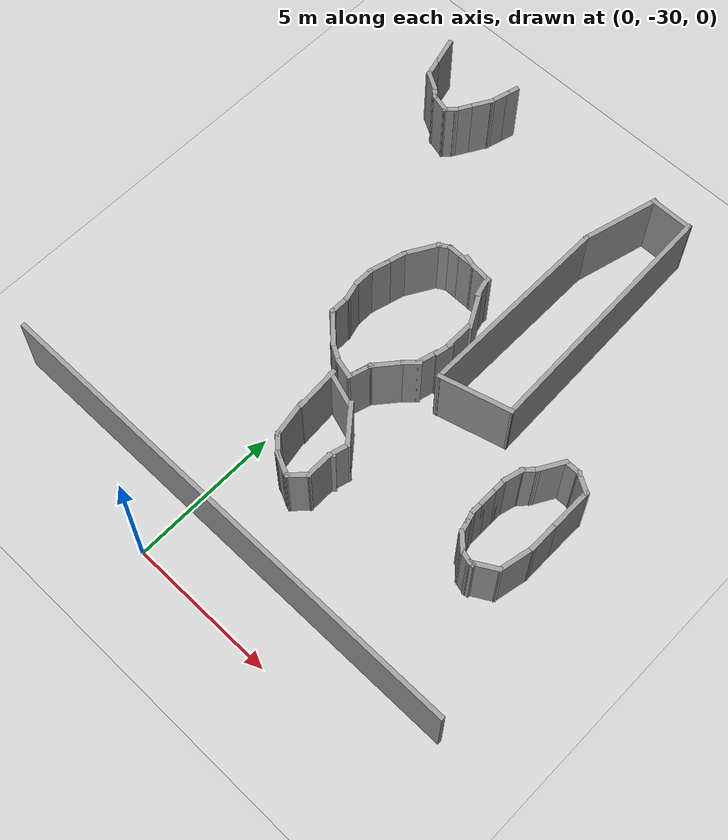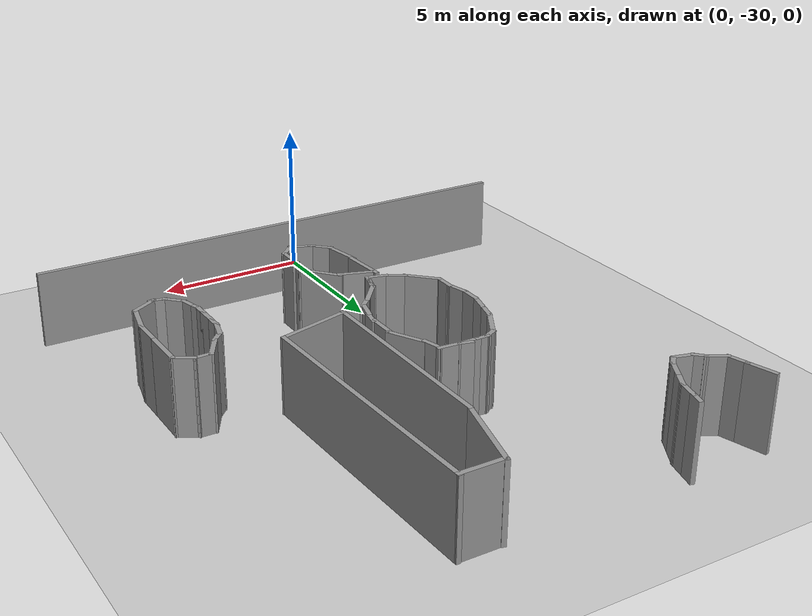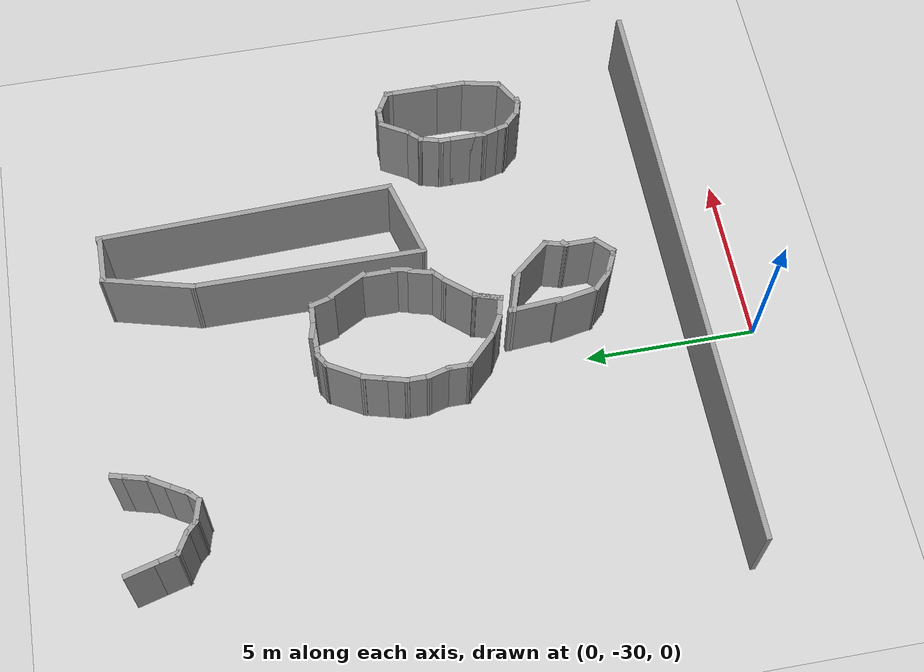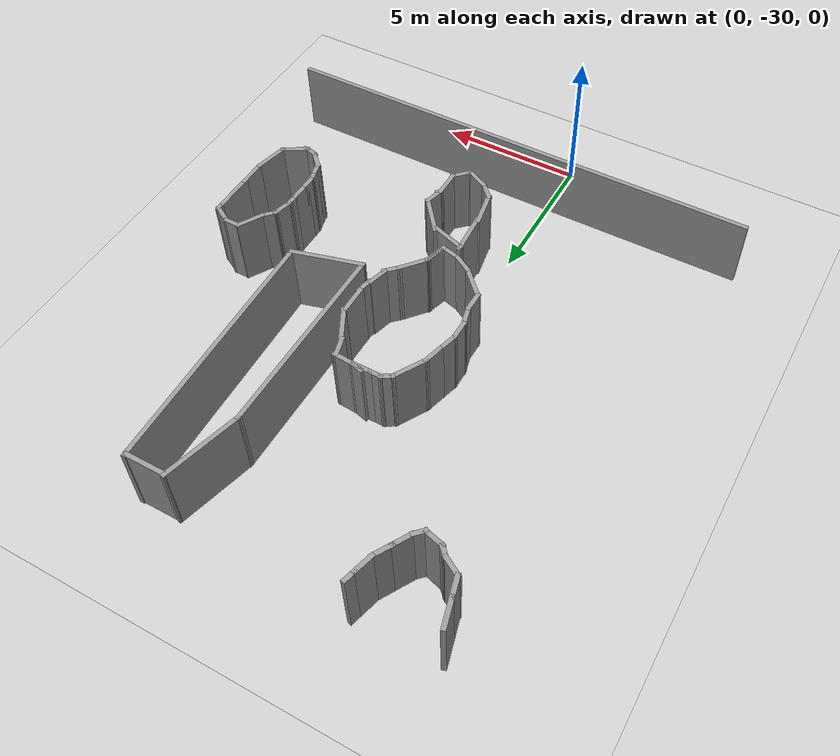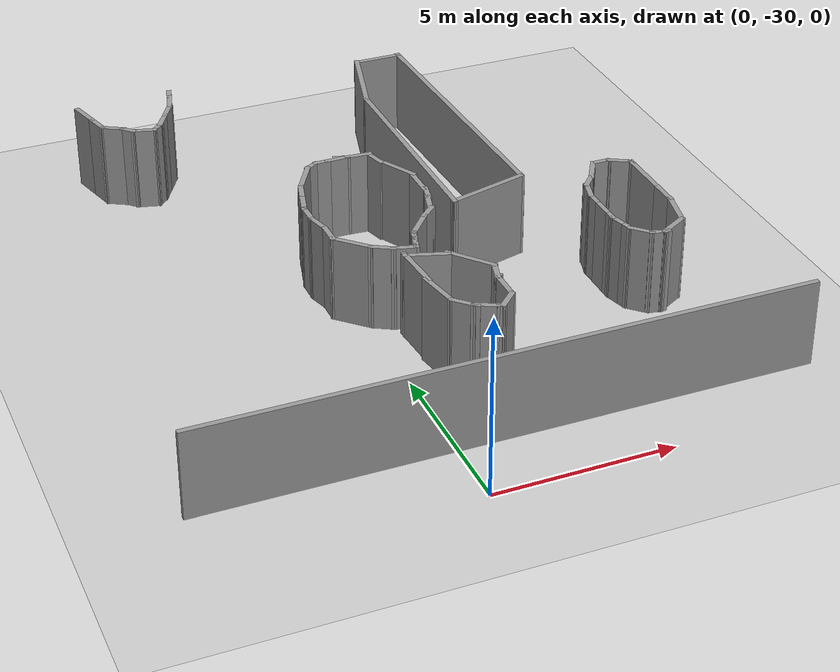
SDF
<sdf version="1.7">
 <world name="default">
  <model name="ground_plane">
   <static>1</static>
   <link name="link">
    <collision name="collision">
     <geometry><plane><normal>0 0 1</normal><size>100 100</size></plane></geometry>
     <surface><friction><ode><mu>100</mu><mu2>50</mu2></ode></friction></surface>
    </collision>
    <visual name="visual">
     <cast_shadows>0</cast_shadows>
     <geometry><plane><normal>0 0 1</normal><size>100 100</size></plane></geometry>
     <material>
      <script><uri>file://media/materials/scripts/gazebo.material</uri><name>Gazebo/Grey</name></script>
     </material>
    </visual>
   </link>
  </model>
  <model name="complex_wall">
   <pose>1.5 0.5 0 0 0 -1.5708</pose>
   <link name="Wall_268">
    <collision name="Wall_268_Collision">
     <geometry><box><size>1 0.15 2.5</size></box></geometry>
     <pose>0 0 1.25 0 -0 0</pose>
    </collision>
    <visual name="Wall_268_Visual">
     <pose>0 0 1.25 0 -0 0</pose>
     <geometry><box><size>1 0.15 2.5</size></box></geometry>
     <material>
      <script><uri>file://media/materials/scripts/gazebo.material</uri><name>Gazebo/Grey</name></script>
      <ambient>1 1 1 1</ambient>
     </material>
     <meta><layer>0</layer></meta>
    </visual>
    <pose>12.3765 -6.41238 0 0 -0 0.261799</pose>
   </link>
   <link name="Wall_269">
    <collision name="Wall_269_Collision">
     <geometry><box><size>0.75 0.15 2.5</size></box></geometry>
     <pose>0 0 1.25 0 -0 0</pose>
    </collision>
    <visual name="Wall_269_Visual">
     <pose>0 0 1.25 0 -0 0</pose>
     <geometry><box><size>0.75 0.15 2.5</size></box></geometry>
     <material>
      <script><uri>file://media/materials/scripts/gazebo.material</uri><name>Gazebo/Grey</name></script>
      <ambient>1 1 1 1</ambient>
     </material>
     <meta><layer>0</layer></meta>
    </visual>
    <pose>13.0768 -6.22474 0 0 -0 0.261799</pose>
   </link>
   <link name="Wall_270">
    <collision name="Wall_270_Collision">
     <geometry><box><size>0.75 0.15 2.5</size></box></geometry>
     <pose>0 0 1.25 0 -0 0</pose>
    </collision>
    <visual name="Wall_270_Visual">
     <pose>0 0 1.25 0 -0 0</pose>
     <geometry><box><size>0.75 0.15 2.5</size></box></geometry>
     <material>
      <script><uri>file://media/materials/scripts/gazebo.material</uri><name>Gazebo/Grey</name></script>
      <ambient>1 1 1 1</ambient>
     </material>
     <meta><layer>0</layer></meta>
    </visual>
    <pose>13.5166 -5.88729 0 0 -0 1.0472</pose>
   </link>
   <link name="Wall_271">
    <collision name="Wall_271_Collision">
     <geometry><box><size>0.5 0.15 2.5</size></box></geometry>
     <pose>0 0 1.25 0 -0 0</pose>
    </collision>
    <visual name="Wall_271_Visual">
     <pose>0 0 1.25 0 -0 0</pose>
     <geometry><box><size>0.5 0.15 2.5</size></box></geometry>
     <material>
      <script><uri>file://media/materials/scripts/gazebo.material</uri><name>Gazebo/Grey</name></script>
      <ambient>1 1 1 1</ambient>
     </material>
     <meta><layer>0</layer></meta>
    </visual>
    <pose>13.7903 -5.50373 0 0 -0 0.785398</pose>
   </link>
   <link name="Wall_272">
    <collision name="Wall_272_Collision">
     <geometry><box><size>0.75 0.15 2.5</size></box></geometry>
     <pose>0 0 1.25 0 -0 0</pose>
    </collision>
    <visual name="Wall_272_Visual">
     <pose>0 0 1.25 0 -0 0</pose>
     <geometry><box><size>0.75 0.15 2.5</size></box></geometry>
     <material>
      <script><uri>file://media/materials/scripts/gazebo.material</uri><name>Gazebo/Grey</name></script>
      <ambient>1 1 1 1</ambient>
     </material>
     <meta><layer>0</layer></meta>
    </visual>
    <pose>13.9917 -5.09021 0 0 -0 1.309</pose>
   </link>
   <link name="Wall_273">
    <collision name="Wall_273_Collision">
     <geometry><box><size>0.5 0.15 2.5</size></box></geometry>
     <pose>0 0 1.25 0 -0 0</pose>
    </collision>
    <visual name="Wall_273_Visual">
     <pose>0 0 1.25 0 -0 0</pose>
     <geometry><box><size>0.5 0.15 2.5</size></box></geometry>
     <material>
      <script><uri>file://media/materials/scripts/gazebo.material</uri><name>Gazebo/Grey</name></script>
      <ambient>1 1 1 1</ambient>
     </material>
     <meta><layer>0</layer></meta>
    </visual>
    <pose>13.9456 -4.67669 0 0 -0 2.35619</pose>
   </link>
   <link name="Wall_274">
    <collision name="Wall_274_Collision">
     <geometry><box><size>0.75 0.15 2.5</size></box></geometry>
     <pose>0 0 1.25 0 -0 0</pose>
    </collision>
    <visual name="Wall_274_Visual">
     <pose>0 0 1.25 0 -0 0</pose>
     <geometry><box><size>0.75 0.15 2.5</size></box></geometry>
     <material>
      <script><uri>file://media/materials/scripts/gazebo.material</uri><name>Gazebo/Grey</name></script>
      <ambient>1 1 1 1</ambient>
     </material>
     <meta><layer>0</layer></meta>
    </visual>
    <pose>13.5621 -4.40295 0 0 -0 2.61799</pose>
   </link>
   <link name="Wall_275">
    <collision name="Wall_275_Collision">
     <geometry><box><size>0.75 0.15 2.5</size></box></geometry>
     <pose>0 0 1.25 0 -0 0</pose>
    </collision>
    <visual name="Wall_275_Visual">
     <pose>0 0 1.25 0 -0 0</pose>
     <geometry><box><size>0.75 0.15 2.5</size></box></geometry>
     <material>
      <script><uri>file://media/materials/scripts/gazebo.material</uri><name>Gazebo/Grey</name></script>
      <ambient>1 1 1 1</ambient>
     </material>
     <meta><layer>0</layer></meta>
    </visual>
    <pose>13.0425 -4.10295 0 0 -0 2.61799</pose>
   </link>
   <link name="Wall_276">
    <collision name="Wall_276_Collision">
     <geometry><box><size>0.75 0.15 2.5</size></box></geometry>
     <pose>0 0 1.25 0 -0 0</pose>
    </collision>
    <visual name="Wall_276_Visual">
     <pose>0 0 1.25 0 -0 0</pose>
     <geometry><box><size>0.75 0.15 2.5</size></box></geometry>
     <material>
      <script><uri>file://media/materials/scripts/gazebo.material</uri><name>Gazebo/Grey</name></script>
      <ambient>1 1 1 1</ambient>
     </material>
     <meta><layer>0</layer></meta>
    </visual>
    <pose>12.4929 -3.8753 0 0 -0 2.87979</pose>
   </link>
   <link name="Wall_277">
    <collision name="Wall_277_Collision">
     <geometry><box><size>0.5 0.15 2.5</size></box></geometry>
     <pose>0 0 1.25 0 -0 0</pose>
    </collision>
    <visual name="Wall_277_Visual">
     <pose>0 0 1.25 0 -0 0</pose>
     <geometry><box><size>0.5 0.15 2.5</size></box></geometry>
     <material>
      <script><uri>file://media/materials/scripts/gazebo.material</uri><name>Gazebo/Grey</name></script>
      <ambient>1 1 1 1</ambient>
     </material>
     <meta><layer>0</layer></meta>
    </visual>
    <pose>12.0341 -3.75236 0 0 -0 2.87979</pose>
   </link>
   <link name="Wall_327">
    <collision name="Wall_327_Collision">
     <geometry><box><size>1.5 0.15 2.5</size></box></geometry>
     <pose>0 0 1.25 0 -0 0</pose>
    </collision>
    <visual name="Wall_327_Visual">
     <pose>0 0 1.25 0 -0 0</pose>
     <geometry><box><size>1.5 0.15 2.5</size></box></geometry>
     <material>
      <script><uri>file://media/materials/scripts/gazebo.material</uri><name>Gazebo/Grey</name></script>
      <ambient>1 1 1 1</ambient>
     </material>
     <meta><layer>0</layer></meta>
    </visual>
    <pose>12.1471 2.90048 0 0 -0 -1.5708</pose>
   </link>
   <link name="Wall_328">
    <collision name="Wall_328_Collision">
     <geometry><box><size>2.73171 0.15 2.5</size></box></geometry>
     <pose>0 0 1.25 0 -0 0</pose>
    </collision>
    <visual name="Wall_328_Visual">
     <pose>0 0 1.25 0 -0 0</pose>
     <geometry><box><size>2.73171 0.15 2.5</size></box></geometry>
     <material>
      <script><uri>file://media/materials/scripts/gazebo.material</uri><name>Gazebo/Grey</name></script>
      <ambient>1 1 1 1</ambient>
     </material>
     <meta><layer>0</layer></meta>
    </visual>
    <pose>13.3632 1.89907 0 0 -0 -0.255633</pose>
   </link>
   <link name="Wall_329">
    <collision name="Wall_329_Collision">
     <geometry><box><size>6.75 0.15 2.5</size></box></geometry>
     <pose>0 0 1.25 0 -0 0</pose>
    </collision>
    <visual name="Wall_329_Visual">
     <pose>0 0 1.25 0 -0 0</pose>
     <geometry><box><size>6.75 0.15 2.5</size></box></geometry>
     <material>
      <script><uri>file://media/materials/scripts/gazebo.material</uri><name>Gazebo/Grey</name></script>
      <ambient>1 1 1 1</ambient>
     </material>
     <meta><layer>0</layer></meta>
    </visual>
    <pose>17.9121 1.57267 0 0 -0 0</pose>
   </link>
   <link name="Wall_330">
    <collision name="Wall_330_Collision">
     <geometry><box><size>2.5 0.15 2.5</size></box></geometry>
     <pose>0 0 1.25 0 -0 0</pose>
    </collision>
    <visual name="Wall_330_Visual">
     <pose>0 0 1.25 0 -0 0</pose>
     <geometry><box><size>2.5 0.15 2.5</size></box></geometry>
     <material>
      <script><uri>file://media/materials/scripts/gazebo.material</uri><name>Gazebo/Grey</name></script>
      <ambient>1 1 1 1</ambient>
     </material>
     <meta><layer>0</layer></meta>
    </visual>
    <pose>20.908 2.70763 0 0 -0 1.8326</pose>
   </link>
   <link name="Wall_331">
    <collision name="Wall_331_Collision">
     <geometry><box><size>8.64379 0.15 2.5</size></box></geometry>
     <pose>0 0 1.25 0 -0 0</pose>
    </collision>
    <visual name="Wall_331_Visual">
     <pose>0 0 1.25 0 -0 0</pose>
     <geometry><box><size>8.64379 0.15 2.5</size></box></geometry>
     <material>
      <script><uri>file://media/materials/scripts/gazebo.material</uri><name>Gazebo/Grey</name></script>
      <ambient>1 1 1 1</ambient>
     </material>
     <meta><layer>0</layer></meta>
    </visual>
    <pose>16.3591 3.70904 0 0 -0 -3.11014</pose>
   </link>
   <link name="Wall_333">
    <collision name="Wall_333_Collision">
     <geometry><box><size>1 0.15 2.5</size></box></geometry>
     <pose>0 0 1.25 0 -0 0</pose>
    </collision>
    <visual name="Wall_333_Visual">
     <pose>0 0 1.25 0 -0 0</pose>
     <geometry><box><size>1 0.15 2.5</size></box></geometry>
     <material>
      <script><uri>file://media/materials/scripts/gazebo.material</uri><name>Gazebo/Grey</name></script>
      <ambient>1 1 1 1</ambient>
     </material>
     <meta><layer>0</layer></meta>
    </visual>
    <pose>22.9295 7.04157 0 0 -0 3.14159</pose>
   </link>
   <link name="Wall_334">
    <collision name="Wall_334_Collision">
     <geometry><box><size>1.5 0.15 2.5</size></box></geometry>
     <pose>0 0 1.25 0 -0 0</pose>
    </collision>
    <visual name="Wall_334_Visual">
     <pose>0 0 1.25 0 -0 0</pose>
     <geometry><box><size>1.5 0.15 2.5</size></box></geometry>
     <material>
      <script><uri>file://media/materials/scripts/gazebo.material</uri><name>Gazebo/Grey</name></script>
      <ambient>1 1 1 1</ambient>
     </material>
     <meta><layer>0</layer></meta>
    </visual>
    <pose>21.8295 7.04157 0 0 -0 3.14159</pose>
   </link>
   <link name="Wall_335">
    <collision name="Wall_335_Collision">
     <geometry><box><size>0.25 0.15 2.5</size></box></geometry>
     <pose>0 0 1.25 0 -0 0</pose>
    </collision>
    <visual name="Wall_335_Visual">
     <pose>0 0 1.25 0 -0 0</pose>
     <geometry><box><size>0.25 0.15 2.5</size></box></geometry>
     <material>
      <script><uri>file://media/materials/scripts/gazebo.material</uri><name>Gazebo/Grey</name></script>
      <ambient>1 1 1 1</ambient>
     </material>
     <meta><layer>0</layer></meta>
    </visual>
    <pose>21.1045 7.04157 0 0 -0 3.14159</pose>
   </link>
   <link name="Wall_336">
    <collision name="Wall_336_Collision">
     <geometry><box><size>0.75 0.15 2.5</size></box></geometry>
     <pose>0 0 1.25 0 -0 0</pose>
    </collision>
    <visual name="Wall_336_Visual">
     <pose>0 0 1.25 0 -0 0</pose>
     <geometry><box><size>0.75 0.15 2.5</size></box></geometry>
     <material>
      <script><uri>file://media/materials/scripts/gazebo.material</uri><name>Gazebo/Grey</name></script>
      <ambient>1 1 1 1</ambient>
     </material>
     <meta><layer>0</layer></meta>
    </visual>
    <pose>20.9045 6.78176 0 0 -0 -2.0944</pose>
   </link>
   <link name="Wall_337">
    <collision name="Wall_337_Collision">
     <geometry><box><size>0.183062 0.15 2.5</size></box></geometry>
     <pose>0 0 1.25 0 -0 0</pose>
    </collision>
    <visual name="Wall_337_Visual">
     <pose>0 0 1.25 0 -0 0</pose>
     <geometry><box><size>0.183062 0.15 2.5</size></box></geometry>
     <material>
      <script><uri>file://media/materials/scripts/gazebo.material</uri><name>Gazebo/Grey</name></script>
      <ambient>1 1 1 1</ambient>
     </material>
     <meta><layer>0</layer></meta>
    </visual>
    <pose>20.7415 6.51167 0 0 -0 -2.47001</pose>
   </link>
   <link name="Wall_338">
    <collision name="Wall_338_Collision">
     <geometry><box><size>0.5 0.15 2.5</size></box></geometry>
     <pose>0 0 1.25 0 -0 0</pose>
    </collision>
    <visual name="Wall_338_Visual">
     <pose>0 0 1.25 0 -0 0</pose>
     <geometry><box><size>0.5 0.15 2.5</size></box></geometry>
     <material>
      <script><uri>file://media/materials/scripts/gazebo.material</uri><name>Gazebo/Grey</name></script>
      <ambient>1 1 1 1</ambient>
     </material>
     <meta><layer>0</layer></meta>
    </visual>
    <pose>20.7286 6.28837 0 0 -0 -1.5708</pose>
   </link>
   <link name="Wall_340">
    <collision name="Wall_340_Collision">
     <geometry><box><size>1 0.15 2.5</size></box></geometry>
     <pose>0 0 1.25 0 -0 0</pose>
    </collision>
    <visual name="Wall_340_Visual">
     <pose>0 0 1.25 0 -0 0</pose>
     <geometry><box><size>1 0.15 2.5</size></box></geometry>
     <material>
      <script><uri>file://media/materials/scripts/gazebo.material</uri><name>Gazebo/Grey</name></script>
      <ambient>1 1 1 1</ambient>
     </material>
     <meta><layer>0</layer></meta>
    </visual>
    <pose>21.0926 5.79937 0 0 -0 -0.523599</pose>
   </link>
   <link name="Wall_342">
    <collision name="Wall_342_Collision">
     <geometry><box><size>0.5 0.15 2.5</size></box></geometry>
     <pose>0 0 1.25 0 -0 0</pose>
    </collision>
    <visual name="Wall_342_Visual">
     <pose>0 0 1.25 0 -0 0</pose>
     <geometry><box><size>0.5 0.15 2.5</size></box></geometry>
     <material>
      <script><uri>file://media/materials/scripts/gazebo.material</uri><name>Gazebo/Grey</name></script>
      <ambient>1 1 1 1</ambient>
     </material>
     <meta><layer>0</layer></meta>
    </visual>
    <pose>22.5397 5.13075 0 0 -0 0</pose>
   </link>
   <link name="Wall_343">
    <collision name="Wall_343_Collision">
     <geometry><box><size>0.75 0.15 2.5</size></box></geometry>
     <pose>0 0 1.25 0 -0 0</pose>
    </collision>
    <visual name="Wall_343_Visual">
     <pose>0 0 1.25 0 -0 0</pose>
     <geometry><box><size>0.75 0.15 2.5</size></box></geometry>
     <material>
      <script><uri>file://media/materials/scripts/gazebo.material</uri><name>Gazebo/Grey</name></script>
      <ambient>1 1 1 1</ambient>
     </material>
     <meta><layer>0</layer></meta>
    </visual>
    <pose>23.0147 5.13075 0 0 -0 0</pose>
   </link>
   <link name="Wall_344">
    <collision name="Wall_344_Collision">
     <geometry><box><size>0.5 0.15 2.5</size></box></geometry>
     <pose>0 0 1.25 0 -0 0</pose>
    </collision>
    <visual name="Wall_344_Visual">
     <pose>0 0 1.25 0 -0 0</pose>
     <geometry><box><size>0.5 0.15 2.5</size></box></geometry>
     <material>
      <script><uri>file://media/materials/scripts/gazebo.material</uri><name>Gazebo/Grey</name></script>
      <ambient>1 1 1 1</ambient>
     </material>
     <meta><layer>0</layer></meta>
    </visual>
    <pose>23.4897 5.13075 0 0 -0 0</pose>
   </link>
   <link name="Wall_345">
    <collision name="Wall_345_Collision">
     <geometry><box><size>0.5 0.15 2.5</size></box></geometry>
     <pose>0 0 1.25 0 -0 0</pose>
    </collision>
    <visual name="Wall_345_Visual">
     <pose>0 0 1.25 0 -0 0</pose>
     <geometry><box><size>0.5 0.15 2.5</size></box></geometry>
     <material>
      <script><uri>file://media/materials/scripts/gazebo.material</uri><name>Gazebo/Grey</name></script>
      <ambient>1 1 1 1</ambient>
     </material>
     <meta><layer>0</layer></meta>
    </visual>
    <pose>23.8338 5.17604 0 0 -0 0.261799</pose>
   </link>
   <link name="Wall_346">
    <collision name="Wall_346_Collision">
     <geometry><box><size>0.5 0.15 2.5</size></box></geometry>
     <pose>0 0 1.25 0 -0 0</pose>
    </collision>
    <visual name="Wall_346_Visual">
     <pose>0 0 1.25 0 -0 0</pose>
     <geometry><box><size>0.5 0.15 2.5</size></box></geometry>
     <material>
      <script><uri>file://media/materials/scripts/gazebo.material</uri><name>Gazebo/Grey</name></script>
      <ambient>1 1 1 1</ambient>
     </material>
     <meta><layer>0</layer></meta>
    </visual>
    <pose>24.1718 5.26663 0 0 -0 0.261799</pose>
   </link>
   <link name="Wall_347">
    <collision name="Wall_347_Collision">
     <geometry><box><size>0.75 0.15 2.5</size></box></geometry>
     <pose>0 0 1.25 0 -0 0</pose>
    </collision>
    <visual name="Wall_347_Visual">
     <pose>0 0 1.25 0 -0 0</pose>
     <geometry><box><size>0.75 0.15 2.5</size></box></geometry>
     <material>
      <script><uri>file://media/materials/scripts/gazebo.material</uri><name>Gazebo/Grey</name></script>
      <ambient>1 1 1 1</ambient>
     </material>
     <meta><layer>0</layer></meta>
    </visual>
    <pose>24.553 5.52405 0 0 -0 0.785398</pose>
   </link>
   <link name="Wall_348">
    <collision name="Wall_348_Collision">
     <geometry><box><size>0.5 0.15 2.5</size></box></geometry>
     <pose>0 0 1.25 0 -0 0</pose>
    </collision>
    <visual name="Wall_348_Visual">
     <pose>0 0 1.25 0 -0 0</pose>
     <geometry><box><size>0.5 0.15 2.5</size></box></geometry>
     <material>
      <script><uri>file://media/materials/scripts/gazebo.material</uri><name>Gazebo/Grey</name></script>
      <ambient>1 1 1 1</ambient>
     </material>
     <meta><layer>0</layer></meta>
    </visual>
    <pose>24.8104 5.90522 0 0 -0 1.309</pose>
   </link>
   <link name="Wall_349">
    <collision name="Wall_349_Collision">
     <geometry><box><size>0.25 0.15 2.5</size></box></geometry>
     <pose>0 0 1.25 0 -0 0</pose>
    </collision>
    <visual name="Wall_349_Visual">
     <pose>0 0 1.25 0 -0 0</pose>
     <geometry><box><size>0.25 0.15 2.5</size></box></geometry>
     <material>
      <script><uri>file://media/materials/scripts/gazebo.material</uri><name>Gazebo/Grey</name></script>
      <ambient>1 1 1 1</ambient>
     </material>
     <meta><layer>0</layer></meta>
    </visual>
    <pose>24.8557 6.12426 0 0 -0 1.5708</pose>
   </link>
   <link name="Wall_351">
    <collision name="Wall_351_Collision">
     <geometry><box><size>1 0.15 2.5</size></box></geometry>
     <pose>0 0 1.25 0 -0 0</pose>
    </collision>
    <visual name="Wall_351_Visual">
     <pose>0 0 1.25 0 -0 0</pose>
     <geometry><box><size>1 0.15 2.5</size></box></geometry>
     <material>
      <script><uri>file://media/materials/scripts/gazebo.material</uri><name>Gazebo/Grey</name></script>
      <ambient>1 1 1 1</ambient>
     </material>
     <meta><layer>0</layer></meta>
    </visual>
    <pose>24.6432 6.44232 0 0 -0 2.0944</pose>
   </link>
   <link name="Wall_352">
    <collision name="Wall_352_Collision">
     <geometry><box><size>1.25079 0.15 2.5</size></box></geometry>
     <pose>0 0 1.25 0 -0 0</pose>
    </collision>
    <visual name="Wall_352_Visual">
     <pose>0 0 1.25 0 -0 0</pose>
     <geometry><box><size>1.25079 0.15 2.5</size></box></geometry>
     <material>
      <script><uri>file://media/materials/scripts/gazebo.material</uri><name>Gazebo/Grey</name></script>
      <ambient>1 1 1 1</ambient>
     </material>
     <meta><layer>0</layer></meta>
    </visual>
    <pose>23.8926 6.92598 0 0 -0 2.92999</pose>
   </link>
   <link name="Wall_354">
    <collision name="Wall_354_Collision">
     <geometry><box><size>1 0.15 2.5</size></box></geometry>
     <pose>0 0 1.25 0 -0 0</pose>
    </collision>
    <visual name="Wall_354_Visual">
     <pose>0 0 1.25 0 -0 0</pose>
     <geometry><box><size>1 0.15 2.5</size></box></geometry>
     <material>
      <script><uri>file://media/materials/scripts/gazebo.material</uri><name>Gazebo/Grey</name></script>
      <ambient>1 1 1 1</ambient>
     </material>
     <meta><layer>0</layer></meta>
    </visual>
    <pose>19.8515 1.07051 0 0 -0 3.14159</pose>
   </link>
   <link name="Wall_355">
    <collision name="Wall_355_Collision">
     <geometry><box><size>1.28471 0.15 2.5</size></box></geometry>
     <pose>0 0 1.25 0 -0 0</pose>
    </collision>
    <visual name="Wall_355_Visual">
     <pose>0 0 1.25 0 -0 0</pose>
     <geometry><box><size>1.28471 0.15 2.5</size></box></geometry>
     <material>
      <script><uri>file://media/materials/scripts/gazebo.material</uri><name>Gazebo/Grey</name></script>
      <ambient>1 1 1 1</ambient>
     </material>
     <meta><layer>0</layer></meta>
    </visual>
    <pose>18.8893 0.839214 0 0 -0 -2.64787</pose>
   </link>
   <link name="Wall_356">
    <collision name="Wall_356_Collision">
     <geometry><box><size>0.75 0.15 2.5</size></box></geometry>
     <pose>0 0 1.25 0 -0 0</pose>
    </collision>
    <visual name="Wall_356_Visual">
     <pose>0 0 1.25 0 -0 0</pose>
     <geometry><box><size>0.75 0.15 2.5</size></box></geometry>
     <material>
      <script><uri>file://media/materials/scripts/gazebo.material</uri><name>Gazebo/Grey</name></script>
      <ambient>1 1 1 1</ambient>
     </material>
     <meta><layer>0</layer></meta>
    </visual>
    <pose>18.0999 0.455113 0 0 -0 -2.87979</pose>
   </link>
   <link name="Wall_357">
    <collision name="Wall_357_Collision">
     <geometry><box><size>0.801562 0.15 2.5</size></box></geometry>
     <pose>0 0 1.25 0 -0 0</pose>
    </collision>
    <visual name="Wall_357_Visual">
     <pose>0 0 1.25 0 -0 0</pose>
     <geometry><box><size>0.801562 0.15 2.5</size></box></geometry>
     <material>
      <script><uri>file://media/materials/scripts/gazebo.material</uri><name>Gazebo/Grey</name></script>
      <ambient>1 1 1 1</ambient>
     </material>
     <meta><layer>0</layer></meta>
    </visual>
    <pose>17.7859 0.09017 0 0 -0 -1.64521</pose>
   </link>
   <link name="Wall_358">
    <collision name="Wall_358_Collision">
     <geometry><box><size>0.5 0.15 2.5</size></box></geometry>
     <pose>0 0 1.25 0 -0 0</pose>
    </collision>
    <visual name="Wall_358_Visual">
     <pose>0 0 1.25 0 -0 0</pose>
     <geometry><box><size>0.5 0.15 2.5</size></box></geometry>
     <material>
      <script><uri>file://media/materials/scripts/gazebo.material</uri><name>Gazebo/Grey</name></script>
      <ambient>1 1 1 1</ambient>
     </material>
     <meta><layer>0</layer></meta>
    </visual>
    <pose>17.7164 -0.403746 0 0 -0 -1.8326</pose>
   </link>
   <link name="Wall_360">
    <collision name="Wall_360_Collision">
     <geometry><box><size>0.75 0.15 2.5</size></box></geometry>
     <pose>0 0 1.25 0 -0 0</pose>
    </collision>
    <visual name="Wall_360_Visual">
     <pose>0 0 1.25 0 -0 0</pose>
     <geometry><box><size>0.75 0.15 2.5</size></box></geometry>
     <material>
      <script><uri>file://media/materials/scripts/gazebo.material</uri><name>Gazebo/Grey</name></script>
      <ambient>1 1 1 1</ambient>
     </material>
     <meta><layer>0</layer></meta>
    </visual>
    <pose>17.7617 -0.534709 0 0 -0 -1.5708</pose>
   </link>
   <link name="Wall_361">
    <collision name="Wall_361_Collision">
     <geometry><box><size>0.5 0.15 2.5</size></box></geometry>
     <pose>0 0 1.25 0 -0 0</pose>
    </collision>
    <visual name="Wall_361_Visual">
     <pose>0 0 1.25 0 -0 0</pose>
     <geometry><box><size>0.5 0.15 2.5</size></box></geometry>
     <material>
      <script><uri>file://media/materials/scripts/gazebo.material</uri><name>Gazebo/Grey</name></script>
      <ambient>1 1 1 1</ambient>
     </material>
     <meta><layer>0</layer></meta>
    </visual>
    <pose>17.7617 -1.00971 0 0 -0 -1.5708</pose>
   </link>
   <link name="Wall_362">
    <collision name="Wall_362_Collision">
     <geometry><box><size>0.5 0.15 2.5</size></box></geometry>
     <pose>0 0 1.25 0 -0 0</pose>
    </collision>
    <visual name="Wall_362_Visual">
     <pose>0 0 1.25 0 -0 0</pose>
     <geometry><box><size>0.5 0.15 2.5</size></box></geometry>
     <material>
      <script><uri>file://media/materials/scripts/gazebo.material</uri><name>Gazebo/Grey</name></script>
      <ambient>1 1 1 1</ambient>
     </material>
     <meta><layer>0</layer></meta>
    </visual>
    <pose>17.8492 -1.33626 0 0 -0 -1.0472</pose>
   </link>
   <link name="Wall_363">
    <collision name="Wall_363_Collision">
     <geometry><box><size>1.25 0.15 2.5</size></box></geometry>
     <pose>0 0 1.25 0 -0 0</pose>
    </collision>
    <visual name="Wall_363_Visual">
     <pose>0 0 1.25 0 -0 0</pose>
     <geometry><box><size>1.25 0.15 2.5</size></box></geometry>
     <material>
      <script><uri>file://media/materials/scripts/gazebo.material</uri><name>Gazebo/Grey</name></script>
      <ambient>1 1 1 1</ambient>
     </material>
     <meta><layer>0</layer></meta>
    </visual>
    <pose>18.413 -1.76282 0 0 -0 -0.523599</pose>
   </link>
   <link name="Wall_364">
    <collision name="Wall_364_Collision">
     <geometry><box><size>0.75 0.15 2.5</size></box></geometry>
     <pose>0 0 1.25 0 -0 0</pose>
    </collision>
    <visual name="Wall_364_Visual">
     <pose>0 0 1.25 0 -0 0</pose>
     <geometry><box><size>0.75 0.15 2.5</size></box></geometry>
     <material>
      <script><uri>file://media/materials/scripts/gazebo.material</uri><name>Gazebo/Grey</name></script>
      <ambient>1 1 1 1</ambient>
     </material>
     <meta><layer>0</layer></meta>
    </visual>
    <pose>19.1791 -2.11546 0 0 -0 -0.261799</pose>
   </link>
   <link name="Wall_365">
    <collision name="Wall_365_Collision">
     <geometry><box><size>0.75 0.15 2.5</size></box></geometry>
     <pose>0 0 1.25 0 -0 0</pose>
    </collision>
    <visual name="Wall_365_Visual">
     <pose>0 0 1.25 0 -0 0</pose>
     <geometry><box><size>0.75 0.15 2.5</size></box></geometry>
     <material>
      <script><uri>file://media/materials/scripts/gazebo.material</uri><name>Gazebo/Grey</name></script>
      <ambient>1 1 1 1</ambient>
     </material>
     <meta><layer>0</layer></meta>
    </visual>
    <pose>19.7587 -2.27075 0 0 -0 -0.261799</pose>
   </link>
   <link name="Wall_366">
    <collision name="Wall_366_Collision">
     <geometry><box><size>0.75 0.15 2.5</size></box></geometry>
     <pose>0 0 1.25 0 -0 0</pose>
    </collision>
    <visual name="Wall_366_Visual">
     <pose>0 0 1.25 0 -0 0</pose>
     <geometry><box><size>0.75 0.15 2.5</size></box></geometry>
     <material>
      <script><uri>file://media/materials/scripts/gazebo.material</uri><name>Gazebo/Grey</name></script>
      <ambient>1 1 1 1</ambient>
     </material>
     <meta><layer>0</layer></meta>
    </visual>
    <pose>20.3484 -2.3484 0 0 -0 0</pose>
   </link>
   <link name="Wall_367">
    <collision name="Wall_367_Collision">
     <geometry><box><size>0.75 0.15 2.5</size></box></geometry>
     <pose>0 0 1.25 0 -0 0</pose>
    </collision>
    <visual name="Wall_367_Visual">
     <pose>0 0 1.25 0 -0 0</pose>
     <geometry><box><size>0.75 0.15 2.5</size></box></geometry>
     <material>
      <script><uri>file://media/materials/scripts/gazebo.material</uri><name>Gazebo/Grey</name></script>
      <ambient>1 1 1 1</ambient>
     </material>
     <meta><layer>0</layer></meta>
    </visual>
    <pose>20.9382 -2.27075 0 0 -0 0.261799</pose>
   </link>
   <link name="Wall_368">
    <collision name="Wall_368_Collision">
     <geometry><box><size>0.75 0.15 2.5</size></box></geometry>
     <pose>0 0 1.25 0 -0 0</pose>
    </collision>
    <visual name="Wall_368_Visual">
     <pose>0 0 1.25 0 -0 0</pose>
     <geometry><box><size>0.75 0.15 2.5</size></box></geometry>
     <material>
      <script><uri>file://media/materials/scripts/gazebo.material</uri><name>Gazebo/Grey</name></script>
      <ambient>1 1 1 1</ambient>
     </material>
     <meta><layer>0</layer></meta>
    </visual>
    <pose>21.528 -2.19311 0 0 -0 0</pose>
   </link>
   <link name="Wall_369">
    <collision name="Wall_369_Collision">
     <geometry><box><size>0.15 0.15 2.5</size></box></geometry>
     <pose>0 0 1.25 0 -0 0</pose>
    </collision>
    <visual name="Wall_369_Visual">
     <pose>0 0 1.25 0 -0 0</pose>
     <geometry><box><size>0.15 0.15 2.5</size></box></geometry>
     <material>
      <script><uri>file://media/materials/scripts/gazebo.material</uri><name>Gazebo/Grey</name></script>
      <ambient>1 1 1 1</ambient>
     </material>
     <meta><layer>0</layer></meta>
    </visual>
    <pose>21.828 -2.19311 0 0 -0 0</pose>
   </link>
   <link name="Wall_370">
    <collision name="Wall_370_Collision">
     <geometry><box><size>1.25 0.15 2.5</size></box></geometry>
     <pose>0 0 1.25 0 -0 0</pose>
    </collision>
    <visual name="Wall_370_Visual">
     <pose>0 0 1.25 0 -0 0</pose>
     <geometry><box><size>1.25 0.15 2.5</size></box></geometry>
     <material>
      <script><uri>file://media/materials/scripts/gazebo.material</uri><name>Gazebo/Grey</name></script>
      <ambient>1 1 1 1</ambient>
     </material>
     <meta><layer>0</layer></meta>
    </visual>
    <pose>22.2169 -1.8042 0 0 -0 0.785398</pose>
   </link>
   <link name="Wall_371">
    <collision name="Wall_371_Collision">
     <geometry><box><size>0.75 0.15 2.5</size></box></geometry>
     <pose>0 0 1.25 0 -0 0</pose>
    </collision>
    <visual name="Wall_371_Visual">
     <pose>0 0 1.25 0 -0 0</pose>
     <geometry><box><size>0.75 0.15 2.5</size></box></geometry>
     <material>
      <script><uri>file://media/materials/scripts/gazebo.material</uri><name>Gazebo/Grey</name></script>
      <ambient>1 1 1 1</ambient>
     </material>
     <meta><layer>0</layer></meta>
    </visual>
    <pose>22.7558 -1.15548 0 0 -0 1.0472</pose>
   </link>
   <link name="Wall_372">
    <collision name="Wall_372_Collision">
     <geometry><box><size>0.75 0.15 2.5</size></box></geometry>
     <pose>0 0 1.25 0 -0 0</pose>
    </collision>
    <visual name="Wall_372_Visual">
     <pose>0 0 1.25 0 -0 0</pose>
     <geometry><box><size>0.75 0.15 2.5</size></box></geometry>
     <material>
      <script><uri>file://media/materials/scripts/gazebo.material</uri><name>Gazebo/Grey</name></script>
      <ambient>1 1 1 1</ambient>
     </material>
     <meta><layer>0</layer></meta>
    </visual>
    <pose>22.9835 -0.605899 0 0 -0 1.309</pose>
   </link>
   <link name="Wall_373">
    <collision name="Wall_373_Collision">
     <geometry><box><size>0.869093 0.15 2.5</size></box></geometry>
     <pose>0 0 1.25 0 -0 0</pose>
    </collision>
    <visual name="Wall_373_Visual">
     <pose>0 0 1.25 0 -0 0</pose>
     <geometry><box><size>0.869093 0.15 2.5</size></box></geometry>
     <material>
      <script><uri>file://media/materials/scripts/gazebo.material</uri><name>Gazebo/Grey</name></script>
      <ambient>1 1 1 1</ambient>
     </material>
     <meta><layer>0</layer></meta>
    </visual>
    <pose>22.7169 -0.212305 0 0 -0 2.84868</pose>
   </link>
   <link name="Wall_374">
    <collision name="Wall_374_Collision">
     <geometry><box><size>1.10627 0.15 2.5</size></box></geometry>
     <pose>0 0 1.25 0 -0 0</pose>
    </collision>
    <visual name="Wall_374_Visual">
     <pose>0 0 1.25 0 -0 0</pose>
     <geometry><box><size>1.10627 0.15 2.5</size></box></geometry>
     <material>
      <script><uri>file://media/materials/scripts/gazebo.material</uri><name>Gazebo/Grey</name></script>
      <ambient>1 1 1 1</ambient>
     </material>
     <meta><layer>0</layer></meta>
    </visual>
    <pose>22.0058 0.198214 0 0 -0 2.4452</pose>
   </link>
   <link name="Wall_375">
    <collision name="Wall_375_Collision">
     <geometry><box><size>0.639256 0.15 2.5</size></box></geometry>
     <pose>0 0 1.25 0 -0 0</pose>
    </collision>
    <visual name="Wall_375_Visual">
     <pose>0 0 1.25 0 -0 0</pose>
     <geometry><box><size>0.639256 0.15 2.5</size></box></geometry>
     <material>
      <script><uri>file://media/materials/scripts/gazebo.material</uri><name>Gazebo/Grey</name></script>
      <ambient>1 1 1 1</ambient>
     </material>
     <meta><layer>0</layer></meta>
    </visual>
    <pose>21.47 0.681747 0 0 -0 2.33366</pose>
   </link>
   <link name="Wall_376">
    <collision name="Wall_376_Collision">
     <geometry><box><size>0.75 0.15 2.5</size></box></geometry>
     <pose>0 0 1.25 0 -0 0</pose>
    </collision>
    <visual name="Wall_376_Visual">
     <pose>0 0 1.25 0 -0 0</pose>
     <geometry><box><size>0.75 0.15 2.5</size></box></geometry>
     <material>
      <script><uri>file://media/materials/scripts/gazebo.material</uri><name>Gazebo/Grey</name></script>
      <ambient>1 1 1 1</ambient>
     </material>
     <meta><layer>0</layer></meta>
    </visual>
    <pose>21.0112 0.898643 0 0 -0 2.87979</pose>
   </link>
   <link name="Wall_377">
    <collision name="Wall_377_Collision">
     <geometry><box><size>0.641615 0.15 2.5</size></box></geometry>
     <pose>0 0 1.25 0 -0 0</pose>
    </collision>
    <visual name="Wall_377_Visual">
     <pose>0 0 1.25 0 -0 0</pose>
     <geometry><box><size>0.641615 0.15 2.5</size></box></geometry>
     <material>
      <script><uri>file://media/materials/scripts/gazebo.material</uri><name>Gazebo/Grey</name></script>
      <ambient>1 1 1 1</ambient>
     </material>
     <meta><layer>0</layer></meta>
    </visual>
    <pose>20.4802 1.06098 0 0 -0 2.94875</pose>
   </link>
   <link name="Wall_382">
    <collision name="Wall_382_Collision">
     <geometry><box><size>0.75 0.15 2.5</size></box></geometry>
     <pose>0 0 1.25 0 -0 0</pose>
    </collision>
    <visual name="Wall_382_Visual">
     <pose>0 0 1.25 0 -0 0</pose>
     <geometry><box><size>0.75 0.15 2.5</size></box></geometry>
     <material>
      <script><uri>file://media/materials/scripts/gazebo.material</uri><name>Gazebo/Grey</name></script>
      <ambient>1 1 1 1</ambient>
     </material>
     <meta><layer>0</layer></meta>
    </visual>
    <pose>22.0749 5.20839 0 0 -0 2.87979</pose>
   </link>
   <link name="Wall_383">
    <collision name="Wall_383_Collision">
     <geometry><box><size>0.15 0.15 2.5</size></box></geometry>
     <pose>0 0 1.25 0 -0 0</pose>
    </collision>
    <visual name="Wall_383_Visual">
     <pose>0 0 1.25 0 -0 0</pose>
     <geometry><box><size>0.15 0.15 2.5</size></box></geometry>
     <material>
      <script><uri>file://media/materials/scripts/gazebo.material</uri><name>Gazebo/Grey</name></script>
      <ambient>1 1 1 1</ambient>
     </material>
     <meta><layer>0</layer></meta>
    </visual>
    <pose>21.7852 5.28604 0 0 -0 0</pose>
   </link>
   <link name="Wall_384">
    <collision name="Wall_384_Collision">
     <geometry><box><size>0.592515 0.15 2.5</size></box></geometry>
     <pose>0 0 1.25 0 -0 0</pose>
    </collision>
    <visual name="Wall_384_Visual">
     <pose>0 0 1.25 0 -0 0</pose>
     <geometry><box><size>0.592515 0.15 2.5</size></box></geometry>
     <material>
      <script><uri>file://media/materials/scripts/gazebo.material</uri><name>Gazebo/Grey</name></script>
      <ambient>1 1 1 1</ambient>
     </material>
     <meta><layer>0</layer></meta>
    </visual>
    <pose>21.6229 5.43645 0 0 -0 2.39406</pose>
   </link>
   <link name="Wall_392">
    <collision name="Wall_392_Collision">
     <geometry><box><size>0.15 0.15 2.5</size></box></geometry>
     <pose>0 0 1.25 0 -0 0</pose>
    </collision>
    <visual name="Wall_392_Visual">
     <pose>0 0 1.25 0 -0 0</pose>
     <geometry><box><size>0.15 0.15 2.5</size></box></geometry>
     <material>
      <script><uri>file://media/materials/scripts/gazebo.material</uri><name>Gazebo/Grey</name></script>
      <ambient>1 1 1 1</ambient>
     </material>
     <meta><layer>0</layer></meta>
    </visual>
    <pose>22.3727 -0.108489 0 0 -0 0</pose>
   </link>
   <link name="Wall_393">
    <collision name="Wall_393_Collision">
     <geometry><box><size>0.869093 0.15 2.5</size></box></geometry>
     <pose>0 0 1.25 0 -0 0</pose>
    </collision>
    <visual name="Wall_393_Visual">
     <pose>0 0 1.25 0 -0 0</pose>
     <geometry><box><size>0.869093 0.15 2.5</size></box></geometry>
     <material>
      <script><uri>file://media/materials/scripts/gazebo.material</uri><name>Gazebo/Grey</name></script>
      <ambient>1 1 1 1</ambient>
     </material>
     <meta><layer>0</layer></meta>
    </visual>
    <pose>22.7169 -0.212305 0 0 -0 -0.292913</pose>
   </link>
   <link name="Wall_399">
    <collision name="Wall_399_Collision">
     <geometry><box><size>0.25 0.15 2.5</size></box></geometry>
     <pose>0 0 1.25 0 -0 0</pose>
    </collision>
    <visual name="Wall_399_Visual">
     <pose>0 0 1.25 0 -0 0</pose>
     <geometry><box><size>0.25 0.15 2.5</size></box></geometry>
     <material>
      <script><uri>file://media/materials/scripts/gazebo.material</uri><name>Gazebo/Grey</name></script>
      <ambient>1 1 1 1</ambient>
     </material>
     <meta><layer>0</layer></meta>
    </visual>
    <pose>25.2087 1.0727 0 0 -0 2.35619</pose>
   </link>
   <link name="Wall_401">
    <collision name="Wall_401_Collision">
     <geometry><box><size>0.75 0.15 2.5</size></box></geometry>
     <pose>0 0 1.25 0 -0 0</pose>
    </collision>
    <visual name="Wall_401_Visual">
     <pose>0 0 1.25 0 -0 0</pose>
     <geometry><box><size>0.75 0.15 2.5</size></box></geometry>
     <material>
      <script><uri>file://media/materials/scripts/gazebo.material</uri><name>Gazebo/Grey</name></script>
      <ambient>1 1 1 1</ambient>
     </material>
     <meta><layer>0</layer></meta>
    </visual>
    <pose>24.9543 1.11499 0 0 -0 2.87979</pose>
   </link>
   <link name="Wall_402">
    <collision name="Wall_402_Collision">
     <geometry><box><size>1.50104 0.15 2.5</size></box></geometry>
     <pose>0 0 1.25 0 -0 0</pose>
    </collision>
    <visual name="Wall_402_Visual">
     <pose>0 0 1.25 0 -0 0</pose>
     <geometry><box><size>1.50104 0.15 2.5</size></box></geometry>
     <material>
      <script><uri>file://media/materials/scripts/gazebo.material</uri><name>Gazebo/Grey</name></script>
      <ambient>1 1 1 1</ambient>
     </material>
     <meta><layer>0</layer></meta>
    </visual>
    <pose>24.1467 0.758865 0 0 -0 -2.44433</pose>
   </link>
   <link name="Wall_403">
    <collision name="Wall_403_Collision">
     <geometry><box><size>1.28332 0.15 2.5</size></box></geometry>
     <pose>0 0 1.25 0 -0 0</pose>
    </collision>
    <visual name="Wall_403_Visual">
     <pose>0 0 1.25 0 -0 0</pose>
     <geometry><box><size>1.28332 0.15 2.5</size></box></geometry>
     <material>
      <script><uri>file://media/materials/scripts/gazebo.material</uri><name>Gazebo/Grey</name></script>
      <ambient>1 1 1 1</ambient>
     </material>
     <meta><layer>0</layer></meta>
    </visual>
    <pose>23.5274 -0.213194 0 0 -0 -1.88856</pose>
   </link>
   <link name="Wall_404">
    <collision name="Wall_404_Collision">
     <geometry><box><size>1.55782 0.15 2.5</size></box></geometry>
     <pose>0 0 1.25 0 -0 0</pose>
    </collision>
    <visual name="Wall_404_Visual">
     <pose>0 0 1.25 0 -0 0</pose>
     <geometry><box><size>1.55782 0.15 2.5</size></box></geometry>
     <material>
      <script><uri>file://media/materials/scripts/gazebo.material</uri><name>Gazebo/Grey</name></script>
      <ambient>1 1 1 1</ambient>
     </material>
     <meta><layer>0</layer></meta>
    </visual>
    <pose>23.9769 -0.702674 0 0 -0 0.069398</pose>
   </link>
   <link name="Wall_405">
    <collision name="Wall_405_Collision">
     <geometry><box><size>1.33116 0.15 2.5</size></box></geometry>
     <pose>0 0 1.25 0 -0 0</pose>
    </collision>
    <visual name="Wall_405_Visual">
     <pose>0 0 1.25 0 -0 0</pose>
     <geometry><box><size>1.33116 0.15 2.5</size></box></geometry>
     <material>
      <script><uri>file://media/materials/scripts/gazebo.material</uri><name>Gazebo/Grey</name></script>
      <ambient>1 1 1 1</ambient>
     </material>
     <meta><layer>0</layer></meta>
    </visual>
    <pose>25.2104 -0.597403 0 0 -0 0.180743</pose>
   </link>
   <link name="Wall_406">
    <collision name="Wall_406_Collision">
     <geometry><box><size>0.75 0.15 2.5</size></box></geometry>
     <pose>0 0 1.25 0 -0 0</pose>
    </collision>
    <visual name="Wall_406_Visual">
     <pose>0 0 1.25 0 -0 0</pose>
     <geometry><box><size>0.75 0.15 2.5</size></box></geometry>
     <material>
      <script><uri>file://media/materials/scripts/gazebo.material</uri><name>Gazebo/Grey</name></script>
      <ambient>1 1 1 1</ambient>
     </material>
     <meta><layer>0</layer></meta>
    </visual>
    <pose>26.0035 -0.279108 0 0 -0 0.785398</pose>
   </link>
   <link name="Wall_407">
    <collision name="Wall_407_Collision">
     <geometry><box><size>0.25 0.15 2.5</size></box></geometry>
     <pose>0 0 1.25 0 -0 0</pose>
    </collision>
    <visual name="Wall_407_Visual">
     <pose>0 0 1.25 0 -0 0</pose>
     <geometry><box><size>0.25 0.15 2.5</size></box></geometry>
     <material>
      <script><uri>file://media/materials/scripts/gazebo.material</uri><name>Gazebo/Grey</name></script>
      <ambient>1 1 1 1</ambient>
     </material>
     <meta><layer>0</layer></meta>
    </visual>
    <pose>26.2406 -0.023674 0 0 -0 1.0472</pose>
   </link>
   <link name="Wall_410">
    <collision name="Wall_410_Collision">
     <geometry><box><size>1 0.15 2.5</size></box></geometry>
     <pose>0 0 1.25 0 -0 0</pose>
    </collision>
    <visual name="Wall_410_Visual">
     <pose>0 0 1.25 0 -0 0</pose>
     <geometry><box><size>1 0.15 2.5</size></box></geometry>
     <material>
      <script><uri>file://media/materials/scripts/gazebo.material</uri><name>Gazebo/Grey</name></script>
      <ambient>1 1 1 1</ambient>
     </material>
     <meta><layer>0</layer></meta>
    </visual>
    <pose>25.6691 1.03734 0 0 -0 0</pose>
   </link>
   <link name="Wall_411">
    <collision name="Wall_411_Collision">
     <geometry><box><size>0.75 0.15 2.5</size></box></geometry>
     <pose>0 0 1.25 0 -0 0</pose>
    </collision>
    <visual name="Wall_411_Visual">
     <pose>0 0 1.25 0 -0 0</pose>
     <geometry><box><size>0.75 0.15 2.5</size></box></geometry>
     <material>
      <script><uri>file://media/materials/scripts/gazebo.material</uri><name>Gazebo/Grey</name></script>
      <ambient>1 1 1 1</ambient>
     </material>
     <meta><layer>0</layer></meta>
    </visual>
    <pose>26.3062 0.825208 0 0 -0 -0.785398</pose>
   </link>
   <link name="Wall_412">
    <collision name="Wall_412_Collision">
     <geometry><box><size>0.25 0.15 2.5</size></box></geometry>
     <pose>0 0 1.25 0 -0 0</pose>
    </collision>
    <visual name="Wall_412_Visual">
     <pose>0 0 1.25 0 -0 0</pose>
     <geometry><box><size>0.25 0.15 2.5</size></box></geometry>
     <material>
      <script><uri>file://media/materials/scripts/gazebo.material</uri><name>Gazebo/Grey</name></script>
      <ambient>1 1 1 1</ambient>
     </material>
     <meta><layer>0</layer></meta>
    </visual>
    <pose>26.5054 0.56478 0 0 -0 -1.8326</pose>
   </link>
   <link name="Wall_413">
    <collision name="Wall_413_Collision">
     <geometry><box><size>0.795802 0.15 2.5</size></box></geometry>
     <pose>0 0 1.25 0 -0 0</pose>
    </collision>
    <visual name="Wall_413_Visual">
     <pose>0 0 1.25 0 -0 0</pose>
     <geometry><box><size>0.795802 0.15 2.5</size></box></geometry>
     <material>
      <script><uri>file://media/materials/scripts/gazebo.material</uri><name>Gazebo/Grey</name></script>
      <ambient>1 1 1 1</ambient>
     </material>
     <meta><layer>0</layer></meta>
    </visual>
    <pose>26.3541 0.224754 0 0 -0 -2.01381</pose>
   </link>
   <link name="Wall_439">
    <collision name="Wall_439_Collision">
     <geometry><box><size>17 0.15 2.5</size></box></geometry>
     <pose>0 0 1.25 0 -0 0</pose>
    </collision>
    <visual name="Wall_439_Visual">
     <pose>0 0 1.25 0 -0 0</pose>
     <geometry><box><size>17 0.15 2.5</size></box></geometry>
     <material>
      <script><uri>file://media/materials/scripts/gazebo.material</uri><name>Gazebo/Grey</name></script>
      <ambient>1 1 1 1</ambient>
     </material>
     <meta><layer>0</layer></meta>
    </visual>
    <pose>28.55 0 0 0 -0 1.5708</pose>
   </link>
   <static>1</static>
  </model>
 </world>
</sdf>
